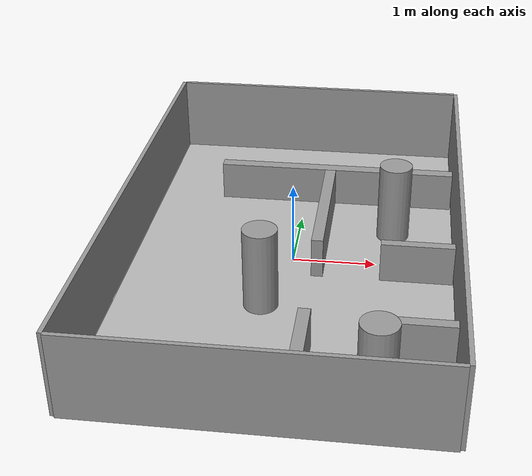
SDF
<sdf version="1.7">
 <world name="construct_world">
  <light name="sun" type="directional">
   <pose>0 0 10 0 -0 0</pose>
   <diffuse>0.8 0.8 0.8 1</diffuse>
   <specular>0.2 0.2 0.2 1</specular>
   <attenuation>
    <range>1000</range>
    <constant>0.9</constant>
    <linear>0.01</linear>
    <quadratic>0.001</quadratic>
   </attenuation>
   <direction>-0.5 0.1 -0.9</direction>
   <spot><inner_angle>0</inner_angle><outer_angle>0</outer_angle><falloff>0</falloff></spot>
  </light>
  <model name="ground_plane">
   <static>1</static>
   <link name="link">
    <collision name="collision">
     <geometry><plane><normal>0 0 1</normal><size>100 100</size></plane></geometry>
     <surface>
      <contact><collide_bitmask>65535</collide_bitmask></contact>
      <friction><ode><mu>100</mu><mu2>50</mu2></ode></friction>
     </surface>
    </collision>
    <visual name="visual">
     <cast_shadows>0</cast_shadows>
     <geometry><box><size>3.9 6.2375 0.01</size></box></geometry>
     <material>
      <script>
       <uri>/home/dongyanqi/catkin_ws/src/simulator_gazebo/materials/scripts/construct_region_map.material</uri>
       <name>GroundPlane/Image/construct</name>
      </script>
     </material>
    </visual>
   </link>
  </model>
  <gravity>0 0 -9.8</gravity>
  <magnetic_field>6e-06 2.3e-05 -4.2e-05</magnetic_field>
  <atmosphere type="adiabatic"/>
  <physics type="ode">
   <max_step_size>0.001</max_step_size>
   <real_time_factor>1</real_time_factor>
   <real_time_update_rate>1000</real_time_update_rate>
  </physics>
  <scene><ambient>0.4 0.4 0.4 1</ambient><background>0.7 0.7 0.7 1</background><shadows>1</shadows></scene>
  <spherical_coordinates>
   <surface_model>EARTH_WGS84</surface_model>
   <latitude_deg>0</latitude_deg>
   <longitude_deg>0</longitude_deg>
   <elevation>0</elevation>
   <heading_deg>0</heading_deg>
  </spherical_coordinates>
  <model name="Box_0">
   <pose>0.323374 0.571023 0 0 -2e-06 0</pose>
   <link name="Box_0_link">
    <collision name="Box_0_Collision">
     <pose>0 0 0.25 0 -0 0</pose>
     <geometry><box><size>0.139358 1.83174 0.5</size></box></geometry>
    </collision>
    <visual name="Box_0_Visual">
     <pose>0 0 0.25 0 -0 0</pose>
     <geometry><box><size>0.139358 1.83174 0.5</size></box></geometry>
     <material>
      <script><uri>file://media/materials/scripts/gazebo.material</uri><name>Gazebo/Grey</name></script>
      <ambient>1 1 1 1</ambient>
     </material>
     <meta><layer>0</layer></meta>
    </visual>
    <inertial>
     <inertia><ixx>1</ixx><ixy>0</ixy><ixz>0</ixz><iyy>1</iyy><iyz>0</iyz><izz>1</izz></inertia>
     <mass>1</mass>
    </inertial>
   </link>
  </model>
  <model name="Box_1">
   <pose>0.397336 1.56214 -7e-06 0 5e-06 -4e-06</pose>
   <link name="Box_1_link">
    <collision name="Box_1_Collision">
     <pose>0 0 0.25 0 -0 0</pose>
     <geometry><box><size>3.06196 0.150485 0.5</size></box></geometry>
    </collision>
    <visual name="Box_1_Visual">
     <pose>0 0 0.25 0 -0 0</pose>
     <geometry><box><size>3.06196 0.150485 0.5</size></box></geometry>
     <material>
      <script><uri>file://media/materials/scripts/gazebo.material</uri><name>Gazebo/Grey</name></script>
      <ambient>1 1 1 1</ambient>
     </material>
     <meta><layer>0</layer></meta>
    </visual>
    <inertial>
     <inertia><ixx>1</ixx><ixy>0</ixy><ixz>0</ixz><iyy>1</iyy><iyz>0</iyz><izz>1</izz></inertia>
     <mass>1</mass>
    </inertial>
   </link>
  </model>
  <model name="Box_2">
   <pose>1.51307 -1.81455 0 2e-06 -0 0</pose>
   <link name="Box_2_link">
    <collision name="Box_2_Collision">
     <pose>0 0 0.25 0 -0 0</pose>
     <geometry><box><size>0.83744 0.124868 0.5</size></box></geometry>
    </collision>
    <visual name="Box_2_Visual">
     <pose>0 0 0.25 0 -0 0</pose>
     <geometry><box><size>0.83744 0.124868 0.5</size></box></geometry>
     <material>
      <script><uri>file://media/materials/scripts/gazebo.material</uri><name>Gazebo/Grey</name></script>
      <ambient>1 1 1 1</ambient>
     </material>
     <meta><layer>0</layer></meta>
    </visual>
    <inertial>
     <inertia><ixx>1</ixx><ixy>0</ixy><ixz>0</ixz><iyy>1</iyy><iyz>0</iyz><izz>1</izz></inertia>
     <mass>1</mass>
    </inertial>
   </link>
  </model>
  <model name="Box_3">
   <pose>0.326263 -2.40615 -0 0 -0 0.000484</pose>
   <link name="Box_3_link">
    <collision name="Box_3_Collision">
     <pose>0 0 0.25 0 -0 0</pose>
     <geometry><box><size>0.138882 1.3707 0.5</size></box></geometry>
    </collision>
    <visual name="Box_3_Visual">
     <pose>0 0 0.25 0 -0 0</pose>
     <geometry><box><size>0.138882 1.3707 0.5</size></box></geometry>
     <material>
      <script><uri>file://media/materials/scripts/gazebo.material</uri><name>Gazebo/Grey</name></script>
      <ambient>1 1 1 1</ambient>
     </material>
     <meta><layer>0</layer></meta>
    </visual>
    <inertial>
     <inertia><ixx>1</ixx><ixy>0</ixy><ixz>0</ixz><iyy>1</iyy><iyz>0</iyz><izz>1</izz></inertia>
     <mass>1</mass>
    </inertial>
   </link>
  </model>
  <model name="Box_4">
   <pose>1.499 -0.28814 -0 -0 -0 -0</pose>
   <link name="Box_4_link">
    <collision name="Box_4_Collision">
     <pose>0 0 0.25 0 -0 0</pose>
     <geometry><box><size>0.862421 0.112415 0.5</size></box></geometry>
    </collision>
    <visual name="Box_4_Visual">
     <pose>0 0 0.25 0 -0 0</pose>
     <geometry><box><size>0.862421 0.112415 0.5</size></box></geometry>
     <material>
      <script><uri>file://media/materials/scripts/gazebo.material</uri><name>Gazebo/Grey</name></script>
      <ambient>1 1 1 1</ambient>
     </material>
     <meta><layer>0</layer></meta>
    </visual>
    <inertial>
     <inertia><ixx>1</ixx><ixy>0</ixy><ixz>0</ixz><iyy>1</iyy><iyz>0</iyz><izz>1</izz></inertia>
     <mass>1</mass>
    </inertial>
   </link>
  </model>
  <model name="Boundary_0">
   <pose>-0.008793 -3.11641 1e-06 -2e-05 -0 -0.000754</pose>
   <link name="Boundary_0_link">
    <collision name="Boundary_0_Collision">
     <pose>0 0 0.5 0 -0 0</pose>
     <geometry><box><size>3.89912 0.05 1</size></box></geometry>
    </collision>
    <visual name="Boundary_0_Visual">
     <pose>0 0 0.5 0 -0 0</pose>
     <geometry><box><size>3.89912 0.05 1</size></box></geometry>
     <material>
      <script><uri>file://media/materials/scripts/gazebo.material</uri><name>Gazebo/Grey</name></script>
      <ambient>1 1 1 1</ambient>
     </material>
     <meta><layer>0</layer></meta>
    </visual>
    <inertial>
     <inertia><ixx>1</ixx><ixy>0</ixy><ixz>0</ixz><iyy>1</iyy><iyz>0</iyz><izz>1</izz></inertia>
     <mass>1</mass>
    </inertial>
   </link>
  </model>
  <model name="Boundary_1">
   <pose>1.9658 -0.00829 1e-06 0 -5.3e-05 2.1e-05</pose>
   <link name="Boundary_1_link">
    <collision name="Boundary_1_Collision">
     <pose>0 0 0.5 0 -0 0</pose>
     <geometry><box><size>0.05 6.21904 1</size></box></geometry>
    </collision>
    <visual name="Boundary_1_Visual">
     <pose>0 0 0.5 0 -0 0</pose>
     <geometry><box><size>0.05 6.21904 1</size></box></geometry>
     <material>
      <script><uri>file://media/materials/scripts/gazebo.material</uri><name>Gazebo/Grey</name></script>
      <ambient>1 1 1 1</ambient>
     </material>
     <meta><layer>0</layer></meta>
    </visual>
    <inertial>
     <inertia><ixx>1</ixx><ixy>0</ixy><ixz>0</ixz><iyy>1</iyy><iyz>0</iyz><izz>1</izz></inertia>
     <mass>1</mass>
    </inertial>
   </link>
  </model>
  <model name="Boundary_2">
   <pose>-0.008906 3.10272 0 5e-06 -0 -0.000758</pose>
   <link name="Boundary_2_link">
    <collision name="Boundary_2_Collision">
     <pose>0 0 0.5 0 -0 0</pose>
     <geometry><box><size>3.89912 0.05 1</size></box></geometry>
    </collision>
    <visual name="Boundary_2_Visual">
     <pose>0 0 0.5 0 -0 0</pose>
     <geometry><box><size>3.89912 0.05 1</size></box></geometry>
     <material>
      <script><uri>file://media/materials/scripts/gazebo.material</uri><name>Gazebo/Grey</name></script>
      <ambient>1 1 1 1</ambient>
     </material>
     <meta><layer>0</layer></meta>
    </visual>
    <inertial>
     <inertia><ixx>1</ixx><ixy>0</ixy><ixz>0</ixz><iyy>1</iyy><iyz>0</iyz><izz>1</izz></inertia>
     <mass>1</mass>
    </inertial>
   </link>
  </model>
  <model name="Boundary_3">
   <pose>-1.98349 -0.005374 1e-06 0 3.3e-05 2.2e-05</pose>
   <link name="Boundary_3_link">
    <collision name="Boundary_3_Collision">
     <pose>0 0 0.5 0 -0 0</pose>
     <geometry><box><size>0.05 6.21904 1</size></box></geometry>
    </collision>
    <visual name="Boundary_3_Visual">
     <pose>0 0 0.5 0 -0 0</pose>
     <geometry><box><size>0.05 6.21904 1</size></box></geometry>
     <material>
      <script><uri>file://media/materials/scripts/gazebo.material</uri><name>Gazebo/Grey</name></script>
      <ambient>1 1 1 1</ambient>
     </material>
     <meta><layer>0</layer></meta>
    </visual>
    <inertial>
     <inertia><ixx>1</ixx><ixy>0</ixy><ixz>0</ixz><iyy>1</iyy><iyz>0</iyz><izz>1</izz></inertia>
     <mass>1</mass>
    </inertial>
   </link>
  </model>
  <model name="unit_cylinder">
   <link name="link">
    <inertial>
     <mass>1</mass>
     <inertia><ixx>0.145833</ixx><ixy>0</ixy><ixz>0</ixz><iyy>0.145833</iyy><iyz>0</iyz><izz>0.125</izz></inertia>
     <pose>0 0 0.5 0 -0 0</pose>
    </inertial>
    <visual name="visual">
     <geometry><cylinder><radius>0.2</radius><length>1</length></cylinder></geometry>
     <material>
      <script><name>Gazebo/Grey</name><uri>file://media/materials/scripts/gazebo.material</uri></script>
      <shader type="pixel"><normal_map>__default__</normal_map></shader>
      <ambient>0.3 0.3 0.3 1</ambient>
      <diffuse>0.7 0.7 0.7 1</diffuse>
      <specular>0.01 0.01 0.01 1</specular>
      <emissive>0 0 0 1</emissive>
     </material>
    </visual>
    <collision name="collision">
     <geometry><cylinder><radius>0.2</radius><length>1</length></cylinder></geometry>
     <surface>
      <friction>
       <ode><mu>1</mu><mu2>1</mu2><fdir1>0 0 0</fdir1><slip1>0</slip1><slip2>0</slip2></ode>
       <torsional>
        <coefficient>1</coefficient>
        <patch_radius>0</patch_radius>
        <surface_radius>0</surface_radius>
        <use_patch_radius>1</use_patch_radius>
        <ode><slip>0</slip></ode>
       </torsional>
      </friction>
      <bounce><restitution_coefficient>0</restitution_coefficient><threshold>1e+06</threshold></bounce>
      <contact>
       <collide_without_contact>0</collide_without_contact>
       <collide_without_contact_bitmask>1</collide_without_contact_bitmask>
       <collide_bitmask>1</collide_bitmask>
       <ode>
        <soft_cfm>0</soft_cfm>
        <soft_erp>0.2</soft_erp>
        <kp>1e+13</kp>
        <kd>1</kd>
        <max_vel>0.01</max_vel>
        <min_depth>0</min_depth>
       </ode>
       <bullet>
        <split_impulse>1</split_impulse>
        <split_impulse_penetration_threshold>-0.01</split_impulse_penetration_threshold>
        <soft_cfm>0</soft_cfm>
        <soft_erp>0.2</soft_erp>
        <kp>1e+13</kp>
        <kd>1</kd>
       </bullet>
      </contact>
     </surface>
    </collision>
   </link>
   <static>0</static>
   <pose>-0.250911 -1.00575 0.499991 0 0 -0.00019</pose>
  </model>
  <model name="unit_cylinder_0">
   <link name="link">
    <inertial>
     <mass>1</mass>
     <inertia><ixx>0.145833</ixx><ixy>0</ixy><ixz>0</ixz><iyy>0.145833</iyy><iyz>0</iyz><izz>0.125</izz></inertia>
     <pose>0 0 0.5 0 -0 0</pose>
    </inertial>
    <visual name="visual">
     <geometry><cylinder><radius>0.2</radius><length>1</length></cylinder></geometry>
     <material>
      <script><name>Gazebo/Grey</name><uri>file://media/materials/scripts/gazebo.material</uri></script>
      <shader type="pixel"><normal_map>__default__</normal_map></shader>
      <ambient>0.3 0.3 0.3 1</ambient>
      <diffuse>0.7 0.7 0.7 1</diffuse>
      <specular>0.01 0.01 0.01 1</specular>
      <emissive>0 0 0 1</emissive>
     </material>
    </visual>
    <collision name="collision">
     <geometry><cylinder><radius>0.2</radius><length>1</length></cylinder></geometry>
     <surface>
      <friction>
       <ode><mu>1</mu><mu2>1</mu2><fdir1>0 0 0</fdir1><slip1>0</slip1><slip2>0</slip2></ode>
       <torsional>
        <coefficient>1</coefficient>
        <patch_radius>0</patch_radius>
        <surface_radius>0</surface_radius>
        <use_patch_radius>1</use_patch_radius>
        <ode><slip>0</slip></ode>
       </torsional>
      </friction>
      <bounce><restitution_coefficient>0</restitution_coefficient><threshold>1e+06</threshold></bounce>
      <contact>
       <collide_without_contact>0</collide_without_contact>
       <collide_without_contact_bitmask>1</collide_without_contact_bitmask>
       <collide_bitmask>1</collide_bitmask>
       <ode>
        <soft_cfm>0</soft_cfm>
        <soft_erp>0.2</soft_erp>
        <kp>1e+13</kp>
        <kd>1</kd>
        <max_vel>0.01</max_vel>
        <min_depth>0</min_depth>
       </ode>
       <bullet>
        <split_impulse>1</split_impulse>
        <split_impulse_penetration_threshold>-0.01</split_impulse_penetration_threshold>
        <soft_cfm>0</soft_cfm>
        <soft_erp>0.2</soft_erp>
        <kp>1e+13</kp>
        <kd>1</kd>
       </bullet>
      </contact>
     </surface>
    </collision>
   </link>
   <static>0</static>
   <pose>1.1899 0.717659 0.5 0 0 -0.000137</pose>
  </model>
  <model name="unit_cylinder_1">
   <link name="link">
    <inertial>
     <mass>1</mass>
     <inertia><ixx>0.145833</ixx><ixy>0</ixy><ixz>0</ixz><iyy>0.145833</iyy><iyz>0</iyz><izz>0.125</izz></inertia>
     <pose>0 0 0.5 0 -0 0</pose>
    </inertial>
    <visual name="visual">
     <geometry><cylinder><radius>0.2</radius><length>1</length></cylinder></geometry>
     <material>
      <script><name>Gazebo/Grey</name><uri>file://media/materials/scripts/gazebo.material</uri></script>
      <shader type="pixel"><normal_map>__default__</normal_map></shader>
      <ambient>0.3 0.3 0.3 1</ambient>
      <diffuse>0.7 0.7 0.7 1</diffuse>
      <specular>0.01 0.01 0.01 1</specular>
      <emissive>0 0 0 1</emissive>
     </material>
    </visual>
    <collision name="collision">
     <geometry><cylinder><radius>0.2</radius><length>1</length></cylinder></geometry>
     <surface>
      <friction>
       <ode><mu>1</mu><mu2>1</mu2><fdir1>0 0 0</fdir1><slip1>0</slip1><slip2>0</slip2></ode>
       <torsional>
        <coefficient>1</coefficient>
        <patch_radius>0</patch_radius>
        <surface_radius>0</surface_radius>
        <use_patch_radius>1</use_patch_radius>
        <ode><slip>0</slip></ode>
       </torsional>
      </friction>
      <bounce><restitution_coefficient>0</restitution_coefficient><threshold>1e+06</threshold></bounce>
      <contact>
       <collide_without_contact>0</collide_without_contact>
       <collide_without_contact_bitmask>1</collide_without_contact_bitmask>
       <collide_bitmask>1</collide_bitmask>
       <ode>
        <soft_cfm>0</soft_cfm>
        <soft_erp>0.2</soft_erp>
        <kp>1e+13</kp>
        <kd>1</kd>
        <max_vel>0.01</max_vel>
        <min_depth>0</min_depth>
       </ode>
       <bullet>
        <split_impulse>1</split_impulse>
        <split_impulse_penetration_threshold>-0.01</split_impulse_penetration_threshold>
        <soft_cfm>0</soft_cfm>
        <soft_erp>0.2</soft_erp>
        <kp>1e+13</kp>
        <kd>1</kd>
       </bullet>
      </contact>
     </surface>
    </collision>
   </link>
   <static>0</static>
   <pose>1.13074 -2.57992 0.5 1e-06 -1e-06 -8.7e-05</pose>
  </model>
 </world>
</sdf>
